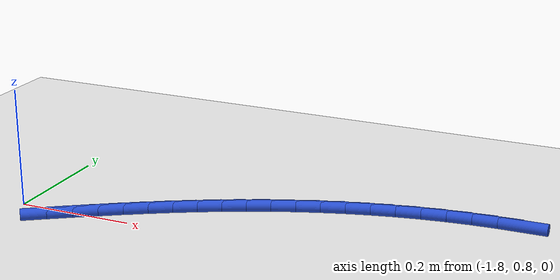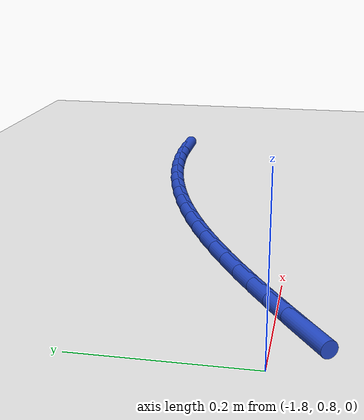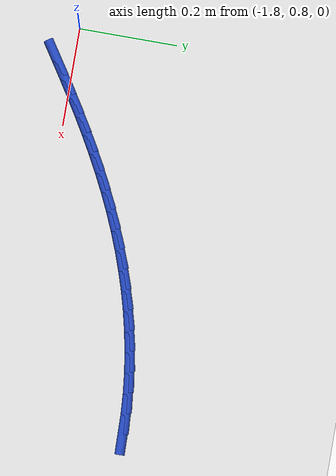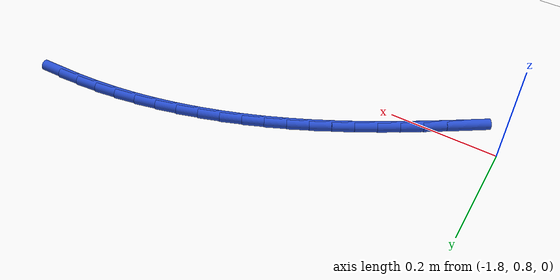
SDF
<sdf version="1.6">
 <world name="default">
  <model name="ground_plane">
   <static>1</static>
   <link name="link">
    <collision name="collision">
     <geometry><plane><normal>0 0 1</normal><size>100 100</size></plane></geometry>
     <surface><friction><ode><mu>100</mu><mu2>50</mu2></ode></friction></surface>
    </collision>
    <visual name="visual">
     <cast_shadows>0</cast_shadows>
     <geometry><plane><normal>0 0 1</normal><size>100 100</size></plane></geometry>
     <material>
      <script><uri>file://media/materials/scripts/gazebo.material</uri><name>Gazebo/WhiteGlow</name></script>
     </material>
    </visual>
   </link>
  </model>
  <model name="line">
   <link name="link_38">
    <pose>-1.0065088588245583 1.0252323388507019 0.01 0 1.57 0.01925380818703091</pose>
    <collision name="collision">
     <geometry><cylinder><radius>0.01</radius><length>0.08</length></cylinder></geometry>
    </collision>
    <visual name="visual">
     <material>
      <script><name>Gazebo/Blue</name><uri>file://media/materials/scripts/gazebo.material</uri></script>
     </material>
     <geometry><cylinder><radius>0.01</radius><length>0.08</length></cylinder></geometry>
    </visual>
   </link>
   <link name="link_39">
    <pose>-1.0482657719009927 1.0244282598935865 0.01 0 1.57 0.06454647241102049</pose>
    <collision name="collision">
     <geometry><cylinder><radius>0.01</radius><length>0.08</length></cylinder></geometry>
    </collision>
    <visual name="visual">
     <material>
      <script><name>Gazebo/Blue</name><uri>file://media/materials/scripts/gazebo.material</uri></script>
     </material>
     <geometry><cylinder><radius>0.01</radius><length>0.08</length></cylinder></geometry>
    </visual>
   </link>
   <link name="link_40">
    <pose>-1.089964525087497 1.0217330084035199 0.01 0 1.57 0.1083959198402164</pose>
    <collision name="collision">
     <geometry><cylinder><radius>0.01</radius><length>0.08</length></cylinder></geometry>
    </collision>
    <visual name="visual">
     <material>
      <script><name>Gazebo/Blue</name><uri>file://media/materials/scripts/gazebo.material</uri></script>
     </material>
     <geometry><cylinder><radius>0.01</radius><length>0.08</length></cylinder></geometry>
    </visual>
   </link>
   <link name="link_41">
    <pose>-1.1314537990172686 1.0172180434010187 0.01 0 1.57 0.15100625188747505</pose>
    <collision name="collision">
     <geometry><cylinder><radius>0.01</radius><length>0.08</length></cylinder></geometry>
    </collision>
    <visual name="visual">
     <material>
      <script><name>Gazebo/Blue</name><uri>file://media/materials/scripts/gazebo.material</uri></script>
     </material>
     <geometry><cylinder><radius>0.01</radius><length>0.08</length></cylinder></geometry>
    </visual>
   </link>
   <link name="link_42">
    <pose>-1.1725995096842836 1.0109571223223863 0.01 0 1.57 0.19209577911662537</pose>
    <collision name="collision">
     <geometry><cylinder><radius>0.01</radius><length>0.08</length></cylinder></geometry>
    </collision>
    <visual name="visual">
     <material>
      <script><name>Gazebo/Blue</name><uri>file://media/materials/scripts/gazebo.material</uri></script>
     </material>
     <geometry><cylinder><radius>0.01</radius><length>0.08</length></cylinder></geometry>
    </visual>
   </link>
   <link name="link_43">
    <pose>-1.2133390233742982 1.003033530833753 0.01 0 1.57 0.23157736933684694</pose>
    <collision name="collision">
     <geometry><cylinder><radius>0.01</radius><length>0.08</length></cylinder></geometry>
    </collision>
    <visual name="visual">
     <material>
      <script><name>Gazebo/Blue</name><uri>file://media/materials/scripts/gazebo.material</uri></script>
     </material>
     <geometry><cylinder><radius>0.01</radius><length>0.08</length></cylinder></geometry>
    </visual>
   </link>
   <link name="link_44">
    <pose>-1.2536282188155174 0.9935330233218368 0.01 0 1.57 0.2694898467344561</pose>
    <collision name="collision">
     <geometry><cylinder><radius>0.01</radius><length>0.08</length></cylinder></geometry>
    </collision>
    <visual name="visual">
     <material>
      <script><name>Gazebo/Blue</name><uri>file://media/materials/scripts/gazebo.material</uri></script>
     </material>
     <geometry><cylinder><radius>0.01</radius><length>0.08</length></cylinder></geometry>
    </visual>
   </link>
   <link name="link_45">
    <pose>-1.2934229747663595 0.9825413541773845 0.01 0 1.57 0.30588774677672725</pose>
    <collision name="collision">
     <geometry><cylinder><radius>0.01</radius><length>0.08</length></cylinder></geometry>
    </collision>
    <visual name="visual">
     <material>
      <script><name>Gazebo/Blue</name><uri>file://media/materials/scripts/gazebo.material</uri></script>
     </material>
     <geometry><cylinder><radius>0.01</radius><length>0.08</length></cylinder></geometry>
    </visual>
   </link>
   <link name="link_46">
    <pose>-1.332679169985244 0.9701442777911438 0.01 0 1.57 0.3408381588892178</pose>
    <collision name="collision">
     <geometry><cylinder><radius>0.01</radius><length>0.08</length></cylinder></geometry>
    </collision>
    <visual name="visual">
     <material>
      <script><name>Gazebo/Blue</name><uri>file://media/materials/scripts/gazebo.material</uri></script>
     </material>
     <geometry><cylinder><radius>0.01</radius><length>0.08</length></cylinder></geometry>
    </visual>
   </link>
   <link name="link_47">
    <pose>-1.3713526832305882 0.9564275485538609 0.01 0 1.57 0.3744179940940921</pose>
    <collision name="collision">
     <geometry><cylinder><radius>0.01</radius><length>0.08</length></cylinder></geometry>
    </collision>
    <visual name="visual">
     <material>
      <script><name>Gazebo/Blue</name><uri>file://media/materials/scripts/gazebo.material</uri></script>
     </material>
     <geometry><cylinder><radius>0.01</radius><length>0.08</length></cylinder></geometry>
    </visual>
   </link>
   <link name="link_48">
    <pose>-1.4093993932608124 0.9414769208562834 0.01 0 1.57 0.4067102133469927</pose>
    <collision name="collision">
     <geometry><cylinder><radius>0.01</radius><length>0.08</length></cylinder></geometry>
    </collision>
    <visual name="visual">
     <material>
      <script><name>Gazebo/Blue</name><uri>file://media/materials/scripts/gazebo.material</uri></script>
     </material>
     <geometry><cylinder><radius>0.01</radius><length>0.08</length></cylinder></geometry>
    </visual>
   </link>
   <link name="link_49">
    <pose>-1.4467754011663498 0.9253781199086518 0.01 0 1.57 0.43744680700313454</pose>
    <collision name="collision">
     <geometry><cylinder><radius>0.01</radius><length>0.08</length></cylinder></geometry>
    </collision>
    <visual name="visual">
     <material>
      <script><name>Gazebo/Blue</name><uri>file://media/materials/scripts/gazebo.material</uri></script>
     </material>
     <geometry><cylinder><radius>0.01</radius><length>0.08</length></cylinder></geometry>
    </visual>
   </link>
   <link name="link_50">
    <pose>-1.4834843231324741 0.9082106346870561 0.01 0 1.57 0.46574308001793474</pose>
    <collision name="collision">
     <geometry><cylinder><radius>0.01</radius><length>0.08</length></cylinder></geometry>
    </collision>
    <visual name="visual">
     <material>
      <script><name>Gazebo/Blue</name><uri>file://media/materials/scripts/gazebo.material</uri></script>
     </material>
     <geometry><cylinder><radius>0.01</radius><length>0.08</length></cylinder></geometry>
    </visual>
   </link>
   <link name="link_51">
    <pose>-1.5196359753708333 0.8900400156869055 0.01 0 1.57 0.491267990132445</pose>
    <collision name="collision">
     <geometry><cylinder><radius>0.01</radius><length>0.08</length></cylinder></geometry>
    </collision>
    <visual name="visual">
     <material>
      <script><name>Gazebo/Blue</name><uri>file://media/materials/scripts/gazebo.material</uri></script>
     </material>
     <geometry><cylinder><radius>0.01</radius><length>0.08</length></cylinder></geometry>
    </visual>
   </link>
   <link name="link_52">
    <pose>-1.5553545727682416 0.8709299236144786 0.01 0 1.57 0.5138452623770677</pose>
    <collision name="collision">
     <geometry><cylinder><radius>0.01</radius><length>0.08</length></cylinder></geometry>
    </collision>
    <visual name="visual">
     <material>
      <script><name>Gazebo/Blue</name><uri>file://media/materials/scripts/gazebo.material</uri></script>
     </material>
     <geometry><cylinder><radius>0.01</radius><length>0.08</length></cylinder></geometry>
    </visual>
   </link>
   <link name="link_53">
    <pose>-1.5907643302115149 0.8509440191760532 0.01 0 1.57 0.5333547266603141</pose>
    <collision name="collision">
     <geometry><cylinder><radius>0.01</radius><length>0.08</length></cylinder></geometry>
    </collision>
    <visual name="visual">
     <material>
      <script><name>Gazebo/Blue</name><uri>file://media/materials/scripts/gazebo.material</uri></script>
     </material>
     <geometry><cylinder><radius>0.01</radius><length>0.08</length></cylinder></geometry>
    </visual>
   </link>
   <link name="link_54">
    <pose>-1.6259894625874676 0.8301459630779084 0.01 0 1.57 0.5497286316519538</pose>
    <collision name="collision">
     <geometry><cylinder><radius>0.01</radius><length>0.08</length></cylinder></geometry>
    </collision>
    <visual name="visual">
     <material>
      <script><name>Gazebo/Blue</name><uri>file://media/materials/scripts/gazebo.material</uri></script>
     </material>
     <geometry><cylinder><radius>0.01</radius><length>0.08</length></cylinder></geometry>
    </visual>
   </link>
   <link name="link_55">
    <pose>-1.6611541847829139 0.8085994160263218 0.01 0 1.57 0.562946485534427</pose>
    <collision name="collision">
     <geometry><cylinder><radius>0.01</radius><length>0.08</length></cylinder></geometry>
    </collision>
    <visual name="visual">
     <material>
      <script><name>Gazebo/Blue</name><uri>file://media/materials/scripts/gazebo.material</uri></script>
     </material>
     <geometry><cylinder><radius>0.01</radius><length>0.08</length></cylinder></geometry>
    </visual>
   </link>
   <link name="link_56">
    <pose>-1.6963827116846693 0.7863680387275712 0.01 0 1.57 0.5730291810932302</pose>
    <collision name="collision">
     <geometry><cylinder><radius>0.01</radius><length>0.08</length></cylinder></geometry>
    </collision>
    <visual name="visual">
     <material>
      <script><name>Gazebo/Blue</name><uri>file://media/materials/scripts/gazebo.material</uri></script>
     </material>
     <geometry><cylinder><radius>0.01</radius><length>0.08</length></cylinder></geometry>
    </visual>
   </link>
   <link name="link_57">
    <pose>-1.7317992581795485 0.763515491887936 0.01 0 1.57 0.5801263401854877</pose>
    <collision name="collision">
     <geometry><cylinder><radius>0.01</radius><length>0.08</length></cylinder></geometry>
    </collision>
    <visual name="visual">
     <material>
      <script><name>Gazebo/Blue</name><uri>file://media/materials/scripts/gazebo.material</uri></script>
     </material>
     <geometry><cylinder><radius>0.01</radius><length>0.08</length></cylinder></geometry>
    </visual>
   </link>
  </model>
 </world>
</sdf>
